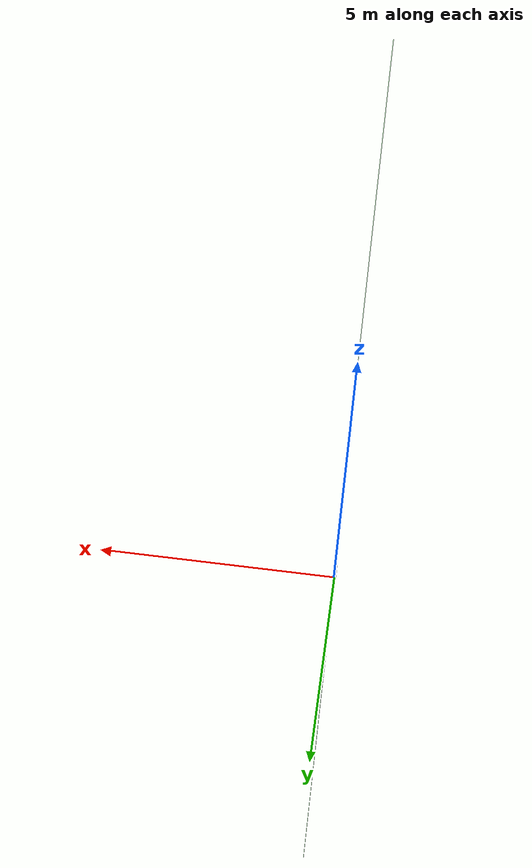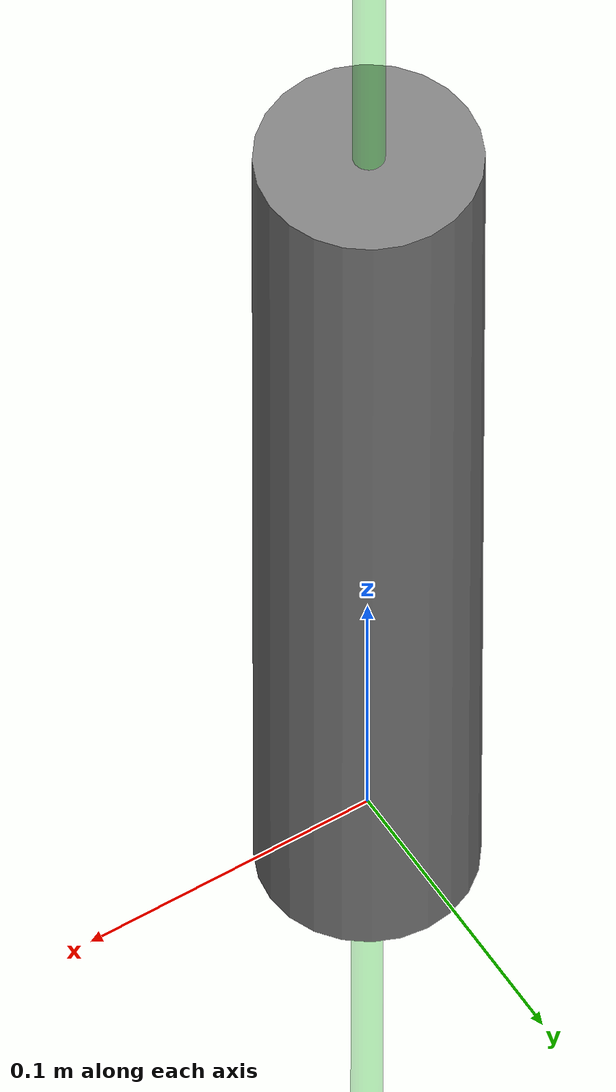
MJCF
<mujoco model="bat_one">
    <worldbody>
        <body name = "bat_one_gripper" pos="0 0 0.15" quat="0 0 0 1" >
        <site name="ft_frame" pos="0 0 0" size="0.01 0.01 0.01" rgba="1 0 0 1" type="sphere" group="1" />
        <!-- This site was added for visualization. -->
        <site name="grip_site" pos="0 0 -0.1775" size="0.01 0.01 0.01" rgba="1 0 0 0.5" type="sphere" group="1"/>
        <!-- This site was added for visualization. -->
        <site name="grip_site_cylinder" pos="0 0 0.1399" size="0.005 10" rgba="0 1 0 0.3" type="cylinder" group="1"/>
        <geom name="bat" size="0.035 0.175" type="cylinder" />
        <geom name="bat_one" size="0.035 0.175" type="cylinder" contype="0" conaffinity="0" group="1" />
        </body>
    </worldbody>
    <sensor>
        <force name="force_ee" site="ft_frame"/>
        <torque name="torque_ee" site="ft_frame"/>
    </sensor>
</mujoco>
